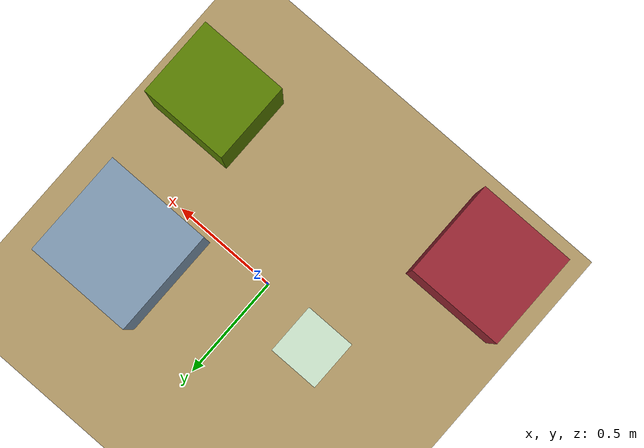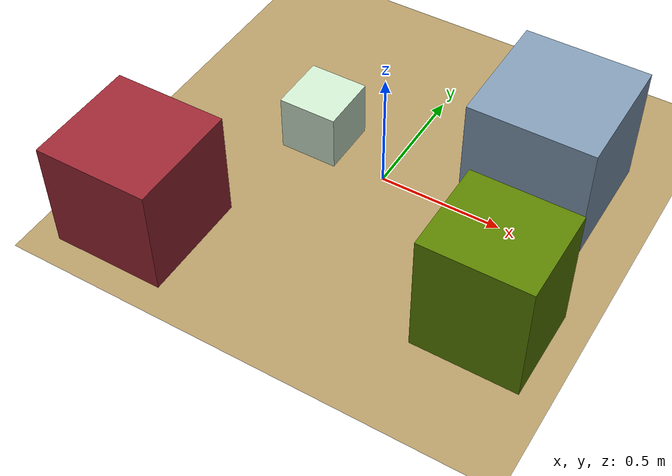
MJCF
<mujoco>
   <asset>
<texture type="skybox" builtin="gradient" rgb1="0.2 0.7 0.1" rgb2="1.0 0.4 0.7" width="256" height="256"/>
<texture name="checker_0" builtin="checker" type="2d" rgb1="0.9 0.0 0.0" rgb2="0.3 0.3 0.4" width="200" height="200"/>
<texture name="flat_1" builtin="flat" rgb1="0.5 0.6 0.7" rgb2="0.5 0.6 0.7"  width="200" height="200"/>
<texture name="checker_2" builtin="checker" type="2d" rgb1="0.2 0.4 0.0" rgb2="0.5 0.6 0.0" width="200" height="200"/>
<texture name="flat_3" builtin="flat" rgb1="0.8 0.9 0.8" rgb2="0.8 0.9 0.8"  width="200" height="200"/><material name="checker_0_mat" reflectance="0" texrepeat="4 4" texture="checker_0" texuniform="false" />
<material name="flat_1_mat" reflectance="0" texture="flat_1" texuniform="true"/>
<material name="checker_2_mat" reflectance="0" texrepeat="10 10" texture="checker_2" texuniform="false" />
<material name="flat_3_mat" reflectance="0" texture="flat_3" texuniform="true"/>
   </asset>

   <worldbody>
      <light diffuse=".9 .9 .9" pos="0 0 3" dir="0 0 -1"/>
     <geom type="plane" size="1 1 0.1" rgba="0.7 0.6 0.4 1"/>
<geom type="box" pos="-0.65 -0.66 0.23" size="0.23 0.23 0.23" material="checker_0_mat" />
<geom type="box" pos="0.56 0.28 0.25" size="0.25 0.25 0.25" material="flat_1_mat" />
<geom type="box" pos="0.68 -0.45 0.26" size="0.21 0.19 0.26" material="checker_2_mat" />
<geom type="box" pos="-0.32 0.08 0.12" size="0.12 0.12 0.12" material="flat_3_mat" /><camera euler="60 0 180" fovy="60" name="camera_a" pos="0 -1.5 1"></camera>   </worldbody>
</mujoco>
